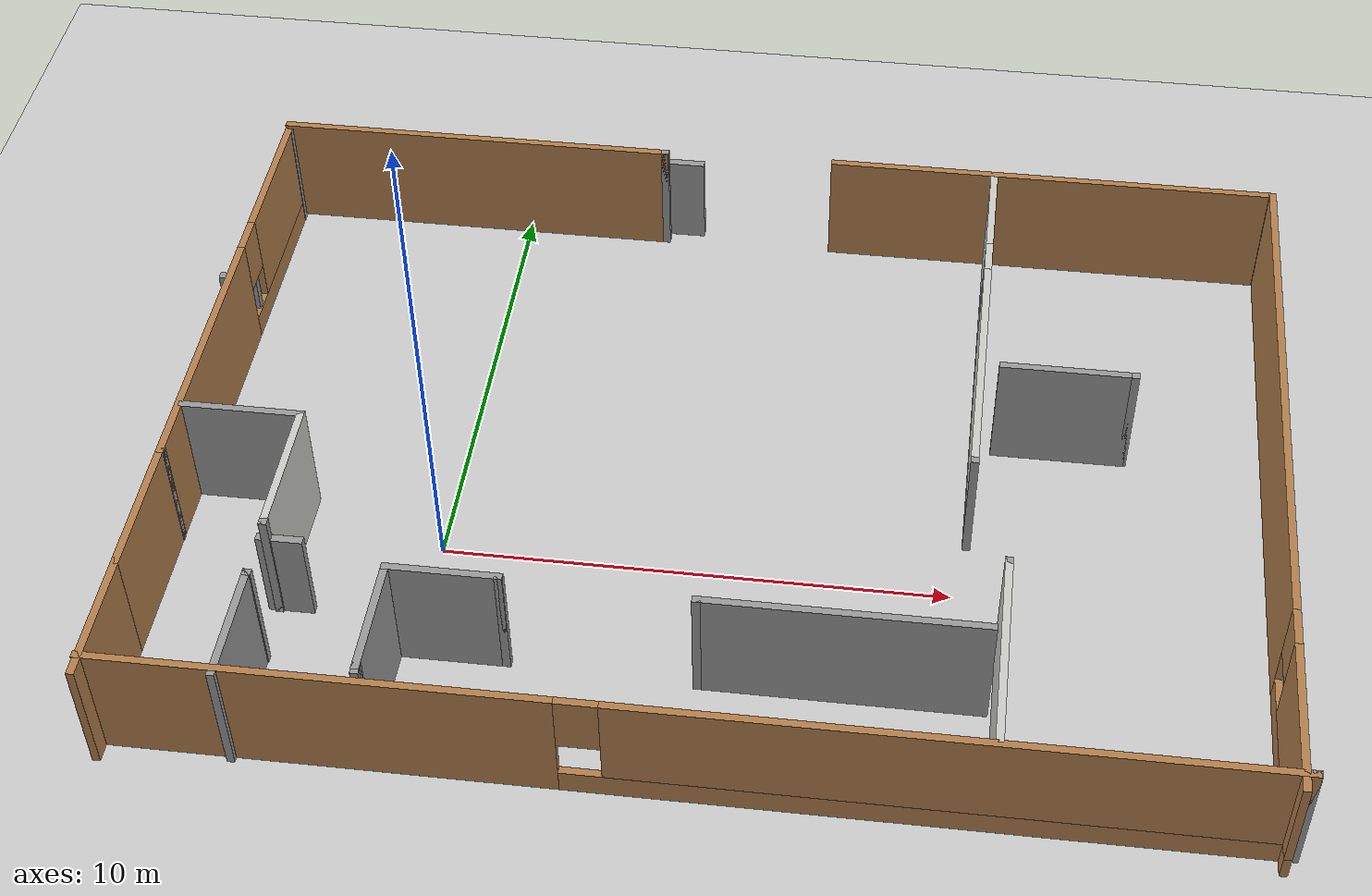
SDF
<sdf version="1.7">
 <world name="default">
  <model name="ground_plane">
   <static>1</static>
   <link name="link">
    <collision name="collision">
     <geometry><plane><normal>0 0 1</normal><size>100 100</size></plane></geometry>
     <surface>
      <contact><collide_bitmask>65535</collide_bitmask></contact>
      <friction><ode><mu>100</mu><mu2>50</mu2></ode></friction>
     </surface>
    </collision>
    <visual name="visual">
     <cast_shadows>0</cast_shadows>
     <geometry><plane><normal>0 0 1</normal><size>100 100</size></plane></geometry>
     <material>
      <script><uri>file://media/materials/scripts/gazebo.material</uri><name>Gazebo/Grey</name></script>
     </material>
    </visual>
   </link>
  </model>
  <model name="roboworld">
   <pose>5.5327 2.11728 0 0 -0 0</pose>
   <link name="Door_0">
    <collision name="Door_0_Collision">
     <geometry><box><size>0.9 0.17 2</size></box></geometry>
     <pose>0 0 1 0 -0 0</pose>
    </collision>
    <visual name="Door_0_Visual">
     <pose>0 0 1 0 -0 0</pose>
     <geometry><box><size>0.9 0.17 2</size></box></geometry>
     <material>
      <script><uri>file://media/materials/scripts/gazebo.material</uri><name>Gazebo/Grey</name></script>
     </material>
    </visual>
    <pose>-8.11468 -3.9025 0 0 -0 0</pose>
   </link>
   <link name="Door_1">
    <collision name="Door_1_Collision">
     <geometry><box><size>0.9 0.17 2</size></box></geometry>
     <pose>0 0 1 0 -0 0</pose>
    </collision>
    <visual name="Door_1_Visual">
     <pose>0 0 1 0 -0 0</pose>
     <geometry><box><size>0.9 0.17 2</size></box></geometry>
     <material>
      <script><uri>file://media/materials/scripts/gazebo.material</uri><name>Gazebo/Grey</name></script>
     </material>
    </visual>
    <pose>-2.08733 8.03633 0 0 -0 0</pose>
   </link>
   <link name="Wall_0">
    <collision name="Wall_0_Collision">
     <geometry><box><size>3 0.15 2.5</size></box></geometry>
     <pose>0 0 1.25 0 -0 0</pose>
    </collision>
    <visual name="Wall_0_Visual">
     <pose>0 0 1.25 0 -0 0</pose>
     <geometry><box><size>3 0.15 2.5</size></box></geometry>
     <material>
      <script><uri>file://media/materials/scripts/gazebo.material</uri><name>Gazebo/Wood</name></script>
      <ambient>1 1 1 1</ambient>
     </material>
     <meta><layer>0</layer></meta>
    </visual>
    <pose>-10.7727 -3.80228 0 0 -0 1.5708</pose>
   </link>
   <link name="Wall_1">
    <collision name="Wall_1_Collision">
     <geometry><box><size>0.16 0.15 2.5</size></box></geometry>
     <pose>0 0 1.25 0 -0 0</pose>
    </collision>
    <visual name="Wall_1_Visual">
     <pose>0 0 1.25 0 -0 0</pose>
     <geometry><box><size>0.16 0.15 2.5</size></box></geometry>
     <material>
      <script><uri>file://media/materials/scripts/gazebo.material</uri><name>Gazebo/Grey</name></script>
      <ambient>1 1 1 1</ambient>
     </material>
     <meta><layer>0</layer></meta>
    </visual>
    <pose>-10.7677 -2.37728 0 0 -0 0</pose>
   </link>
   <link name="Wall_10">
    <collision name="Wall_10_Collision">
     <geometry><box><size>0.16 0.15 2.5</size></box></geometry>
     <pose>0 0 1.25 0 -0 0</pose>
    </collision>
    <visual name="Wall_10_Visual">
     <pose>0 0 1.25 0 -0 0</pose>
     <geometry><box><size>0.16 0.15 2.5</size></box></geometry>
     <material>
      <script><uri>file://media/materials/scripts/gazebo.material</uri><name>Gazebo/Grey</name></script>
      <ambient>1 1 1 1</ambient>
     </material>
     <meta><layer>0</layer></meta>
    </visual>
    <pose>-2.45 7.71966 0 0 -0 0</pose>
   </link>
   <link name="Wall_12">
    <pose>-0.005 -7.45372 0 0 -0 0</pose>
    <visual name="Wall_12_Visual_0">
     <pose>-6.57776 0 1.25 0 -0 0</pose>
     <geometry><box><size>8.59447 0.15 2.5</size></box></geometry>
     <material>
      <script><uri>file://media/materials/scripts/gazebo.material</uri><name>Gazebo/Wood</name></script>
      <ambient>1 1 1 1</ambient>
     </material>
     <meta><layer>0</layer></meta>
    </visual>
    <collision name="Wall_12_Collision_0">
     <geometry><box><size>8.59447 0.15 2.5</size></box></geometry>
     <pose>-6.57776 0 1.25 0 -0 0</pose>
    </collision>
    <visual name="Wall_12_Visual_1">
     <pose>4.29724 0 0.25 0 -0 0</pose>
     <geometry><box><size>13.1555 0.15 0.5</size></box></geometry>
     <material>
      <script><uri>file://media/materials/scripts/gazebo.material</uri><name>Gazebo/Wood</name></script>
      <ambient>1 1 1 1</ambient>
     </material>
     <meta><layer>0</layer></meta>
    </visual>
    <collision name="Wall_12_Collision_1">
     <geometry><box><size>13.1555 0.15 0.5</size></box></geometry>
     <pose>4.29724 0 0.25 0 -0 0</pose>
    </collision>
    <visual name="Wall_12_Visual_2">
     <pose>4.69724 0 1.5 0 -0 0</pose>
     <geometry><box><size>12.3555 0.15 2</size></box></geometry>
     <material>
      <script><uri>file://media/materials/scripts/gazebo.material</uri><name>Gazebo/Wood</name></script>
      <ambient>1 1 1 1</ambient>
     </material>
     <meta><layer>0</layer></meta>
    </visual>
    <collision name="Wall_12_Collision_2">
     <geometry><box><size>12.3555 0.15 2</size></box></geometry>
     <pose>4.69724 0 1.5 0 -0 0</pose>
    </collision>
    <visual name="Wall_12_Visual_3">
     <pose>-1.88053 0 1.9 0 -0 0</pose>
     <geometry><box><size>0.8 0.15 1.2</size></box></geometry>
     <material>
      <script><uri>file://media/materials/scripts/gazebo.material</uri><name>Gazebo/Wood</name></script>
      <ambient>1 1 1 1</ambient>
     </material>
     <meta><layer>0</layer></meta>
    </visual>
    <collision name="Wall_12_Collision_3">
     <geometry><box><size>0.8 0.15 1.2</size></box></geometry>
     <pose>-1.88053 0 1.9 0 -0 0</pose>
    </collision>
   </link>
   <link name="Wall_13">
    <collision name="Wall_13_Collision">
     <geometry><box><size>0.16 0.15 2.5</size></box></geometry>
     <pose>0 0 1.25 0 -0 0</pose>
    </collision>
    <visual name="Wall_13_Visual">
     <pose>0 0 1.25 0 -0 0</pose>
     <geometry><box><size>0.16 0.15 2.5</size></box></geometry>
     <material>
      <script><uri>file://media/materials/scripts/gazebo.material</uri><name>Gazebo/Grey</name></script>
      <ambient>1 1 1 1</ambient>
     </material>
     <meta><layer>0</layer></meta>
    </visual>
    <pose>10.8 -7.45372 0 0 -0 0</pose>
   </link>
   <link name="Wall_15">
    <collision name="Wall_15_Collision">
     <geometry><box><size>9.5 0.15 2.5</size></box></geometry>
     <pose>0 0 1.25 0 -0 0</pose>
    </collision>
    <visual name="Wall_15_Visual">
     <pose>0 0 1.25 0 -0 0</pose>
     <geometry><box><size>9.5 0.15 2.5</size></box></geometry>
     <material>
      <script><uri>file://media/materials/scripts/gazebo.material</uri><name>Gazebo/Wood</name></script>
      <ambient>1 1 1 1</ambient>
     </material>
     <meta><layer>0</layer></meta>
    </visual>
    <pose>5.92262 7.82728 0 0 -0 0</pose>
   </link>
   <link name="Wall_16">
    <collision name="Wall_16_Collision">
     <geometry><box><size>0.16 0.15 2.5</size></box></geometry>
     <pose>0 0 1.25 0 -0 0</pose>
    </collision>
    <visual name="Wall_16_Visual">
     <pose>0 0 1.25 0 -0 0</pose>
     <geometry><box><size>0.16 0.15 2.5</size></box></geometry>
     <material>
      <script><uri>file://media/materials/scripts/gazebo.material</uri><name>Gazebo/Grey</name></script>
      <ambient>1 1 1 1</ambient>
     </material>
     <meta><layer>0</layer></meta>
    </visual>
    <pose>10.6026 7.82728 0 0 -0 0</pose>
   </link>
   <link name="Wall_17">
    <pose>10.6076 0.027276 0 0 -0 -1.5708</pose>
    <visual name="Wall_17_Visual_0">
     <pose>-2.01749 0 1.25 0 -0 0</pose>
     <geometry><box><size>11.715 0.15 2.5</size></box></geometry>
     <material>
      <script><uri>file://media/materials/scripts/gazebo.material</uri><name>Gazebo/Wood</name></script>
      <ambient>1 1 1 1</ambient>
     </material>
     <meta><layer>0</layer></meta>
    </visual>
    <collision name="Wall_17_Collision_0">
     <geometry><box><size>11.715 0.15 2.5</size></box></geometry>
     <pose>-2.01749 0 1.25 0 -0 0</pose>
    </collision>
    <visual name="Wall_17_Visual_1">
     <pose>5.85751 0 0.25 0 -0 0</pose>
     <geometry><box><size>4.03498 0.15 0.5</size></box></geometry>
     <material>
      <script><uri>file://media/materials/scripts/gazebo.material</uri><name>Gazebo/Wood</name></script>
      <ambient>1 1 1 1</ambient>
     </material>
     <meta><layer>0</layer></meta>
    </visual>
    <collision name="Wall_17_Collision_1">
     <geometry><box><size>4.03498 0.15 0.5</size></box></geometry>
     <pose>5.85751 0 0.25 0 -0 0</pose>
    </collision>
    <visual name="Wall_17_Visual_2">
     <pose>6.25751 0 1.5 0 -0 0</pose>
     <geometry><box><size>3.23498 0.15 2</size></box></geometry>
     <material>
      <script><uri>file://media/materials/scripts/gazebo.material</uri><name>Gazebo/Wood</name></script>
      <ambient>1 1 1 1</ambient>
     </material>
     <meta><layer>0</layer></meta>
    </visual>
    <collision name="Wall_17_Collision_2">
     <geometry><box><size>3.23498 0.15 2</size></box></geometry>
     <pose>6.25751 0 1.5 0 -0 0</pose>
    </collision>
    <visual name="Wall_17_Visual_3">
     <pose>4.24002 0 1.9 0 -0 0</pose>
     <geometry><box><size>0.8 0.15 1.2</size></box></geometry>
     <material>
      <script><uri>file://media/materials/scripts/gazebo.material</uri><name>Gazebo/Wood</name></script>
      <ambient>1 1 1 1</ambient>
     </material>
     <meta><layer>0</layer></meta>
    </visual>
    <collision name="Wall_17_Collision_3">
     <geometry><box><size>0.8 0.15 1.2</size></box></geometry>
     <pose>4.24002 0 1.9 0 -0 0</pose>
    </collision>
   </link>
   <link name="Wall_19">
    <pose>4.69122 3.52728 0 0 -0 -1.5708</pose>
    <visual name="Wall_19_Visual_0">
     <pose>-3.19234 0 1.25 0 -0 0</pose>
     <geometry><box><size>2.36532 0.15 2.5</size></box></geometry>
     <material>
      <script><uri>file://media/materials/scripts/gazebo.material</uri><name>Gazebo/CeilingTiled</name></script>
      <ambient>1 1 1 1</ambient>
     </material>
     <meta><layer>0</layer></meta>
    </visual>
    <collision name="Wall_19_Collision_0">
     <geometry><box><size>2.36532 0.15 2.5</size></box></geometry>
     <pose>-3.19234 0 1.25 0 -0 0</pose>
    </collision>
    <visual name="Wall_19_Visual_1">
     <pose>1.18266 0 0.25 0 -0 0</pose>
     <geometry><box><size>6.38468 0.15 0.5</size></box></geometry>
     <material>
      <script><uri>file://media/materials/scripts/gazebo.material</uri><name>Gazebo/CeilingTiled</name></script>
      <ambient>1 1 1 1</ambient>
     </material>
     <meta><layer>0</layer></meta>
    </visual>
    <collision name="Wall_19_Collision_1">
     <geometry><box><size>6.38468 0.15 0.5</size></box></geometry>
     <pose>1.18266 0 0.25 0 -0 0</pose>
    </collision>
    <visual name="Wall_19_Visual_2">
     <pose>1.58266 0 1.5 0 -0 0</pose>
     <geometry><box><size>5.58468 0.15 2</size></box></geometry>
     <material>
      <script><uri>file://media/materials/scripts/gazebo.material</uri><name>Gazebo/CeilingTiled</name></script>
      <ambient>1 1 1 1</ambient>
     </material>
     <meta><layer>0</layer></meta>
    </visual>
    <collision name="Wall_19_Collision_2">
     <geometry><box><size>5.58468 0.15 2</size></box></geometry>
     <pose>1.58266 0 1.5 0 -0 0</pose>
    </collision>
    <visual name="Wall_19_Visual_3">
     <pose>-1.60968 0 1.9 0 -0 0</pose>
     <geometry><box><size>0.8 0.15 1.2</size></box></geometry>
     <material>
      <script><uri>file://media/materials/scripts/gazebo.material</uri><name>Gazebo/CeilingTiled</name></script>
      <ambient>1 1 1 1</ambient>
     </material>
     <meta><layer>0</layer></meta>
    </visual>
    <collision name="Wall_19_Collision_3">
     <geometry><box><size>0.8 0.15 1.2</size></box></geometry>
     <pose>-1.60968 0 1.9 0 -0 0</pose>
    </collision>
   </link>
   <link name="Wall_2">
    <collision name="Wall_2_Collision">
     <geometry><box><size>0.16 0.15 2.5</size></box></geometry>
     <pose>0 0 1.25 0 -0 0</pose>
    </collision>
    <visual name="Wall_2_Visual">
     <pose>0 0 1.25 0 -0 0</pose>
     <geometry><box><size>0.16 0.15 2.5</size></box></geometry>
     <material>
      <script><uri>file://media/materials/scripts/gazebo.material</uri><name>Gazebo/Grey</name></script>
      <ambient>1 1 1 1</ambient>
     </material>
     <meta><layer>0</layer></meta>
    </visual>
    <pose>-10.7677 -2.37728 0 0 -0 3.14159</pose>
   </link>
   <link name="Wall_20">
    <pose>4.69622 -0.772724 0 0 -0 0</pose>
    <visual name="Wall_20_Visual_0">
     <pose>0 0 1.25 0 -0 0</pose>
     <geometry><box><size>0.16 0.15 2.5</size></box></geometry>
     <material>
      <script><uri>file://media/materials/scripts/gazebo.material</uri><name>Gazebo/Grey</name></script>
      <ambient>1 1 1 1</ambient>
     </material>
     <meta><layer>0</layer></meta>
    </visual>
    <collision name="Wall_20_Collision_0">
     <geometry><box><size>0.16 0.15 2.5</size></box></geometry>
     <pose>0 0 1.25 0 -0 0</pose>
    </collision>
   </link>
   <link name="Wall_22">
    <collision name="Wall_22_Collision">
     <geometry><box><size>4.25 0.15 2.5</size></box></geometry>
     <pose>0 0 1.25 0 -0 0</pose>
    </collision>
    <visual name="Wall_22_Visual">
     <pose>0 0 1.25 0 -0 0</pose>
     <geometry><box><size>4.25 0.15 2.5</size></box></geometry>
     <material>
      <script><uri>file://media/materials/scripts/gazebo.material</uri><name>Gazebo/CeilingTiled</name></script>
      <ambient>1 1 1 1</ambient>
     </material>
     <meta><layer>0</layer></meta>
    </visual>
    <pose>5.44451 -5.29611 0 0 -0 1.5708</pose>
   </link>
   <link name="Wall_23">
    <collision name="Wall_23_Collision">
     <geometry><box><size>0.15 0.15 2.5</size></box></geometry>
     <pose>0 0 1.25 0 -0 0</pose>
    </collision>
    <visual name="Wall_23_Visual">
     <pose>0 0 1.25 0 -0 0</pose>
     <geometry><box><size>0.15 0.15 2.5</size></box></geometry>
     <material>
      <script><uri>file://media/materials/scripts/gazebo.material</uri><name>Gazebo/Grey</name></script>
      <ambient>1 1 1 1</ambient>
     </material>
     <meta><layer>0</layer></meta>
    </visual>
    <pose>5.44451 -3.24611 0 0 -0 0</pose>
   </link>
   <link name="Wall_25">
    <collision name="Wall_25_Collision">
     <geometry><box><size>2.5 0.15 2.5</size></box></geometry>
     <pose>0 0 1.25 0 -0 0</pose>
    </collision>
    <visual name="Wall_25_Visual">
     <pose>0 0 1.25 0 -0 0</pose>
     <geometry><box><size>2.5 0.15 2.5</size></box></geometry>
     <material>
      <script><uri>file://media/materials/scripts/gazebo.material</uri><name>Gazebo/Grey</name></script>
      <ambient>1 1 1 1</ambient>
     </material>
     <meta><layer>0</layer></meta>
    </visual>
    <pose>-9.52239 -1.10457 0 0 -0 0</pose>
   </link>
   <link name="Wall_26">
    <collision name="Wall_26_Collision">
     <geometry><box><size>3 0.15 2.5</size></box></geometry>
     <pose>0 0 1.25 0 -0 0</pose>
    </collision>
    <visual name="Wall_26_Visual">
     <pose>0 0 1.25 0 -0 0</pose>
     <geometry><box><size>3 0.15 2.5</size></box></geometry>
     <material>
      <script><uri>file://media/materials/scripts/gazebo.material</uri><name>Gazebo/CeilingTiled</name></script>
      <ambient>1 1 1 1</ambient>
     </material>
     <meta><layer>0</layer></meta>
    </visual>
    <pose>-8.34739 -2.52957 0 0 -0 -1.5708</pose>
   </link>
   <link name="Wall_27">
    <collision name="Wall_27_Collision">
     <geometry><box><size>0.16 0.15 2.5</size></box></geometry>
     <pose>0 0 1.25 0 -0 0</pose>
    </collision>
    <visual name="Wall_27_Visual">
     <pose>0 0 1.25 0 -0 0</pose>
     <geometry><box><size>0.16 0.15 2.5</size></box></geometry>
     <material>
      <script><uri>file://media/materials/scripts/gazebo.material</uri><name>Gazebo/Grey</name></script>
      <ambient>1 1 1 1</ambient>
     </material>
     <meta><layer>0</layer></meta>
    </visual>
    <pose>-8.34239 -3.95457 0 0 -0 0</pose>
   </link>
   <link name="Wall_29">
    <collision name="Wall_29_Collision">
     <geometry><box><size>2.5 0.15 2.5</size></box></geometry>
     <pose>0 0 1.25 0 -0 0</pose>
    </collision>
    <visual name="Wall_29_Visual">
     <pose>0 0 1.25 0 -0 0</pose>
     <geometry><box><size>2.5 0.15 2.5</size></box></geometry>
     <material>
      <script><uri>file://media/materials/scripts/gazebo.material</uri><name>Gazebo/Grey</name></script>
      <ambient>1 1 1 1</ambient>
     </material>
     <meta><layer>0</layer></meta>
    </visual>
    <pose>-8.32991 -6.38633 0 0 -0 1.5708</pose>
   </link>
   <link name="Wall_30">
    <collision name="Wall_30_Collision">
     <geometry><box><size>0.16 0.15 2.5</size></box></geometry>
     <pose>0 0 1.25 0 -0 0</pose>
    </collision>
    <visual name="Wall_30_Visual">
     <pose>0 0 1.25 0 -0 0</pose>
     <geometry><box><size>0.16 0.15 2.5</size></box></geometry>
     <material>
      <script><uri>file://media/materials/scripts/gazebo.material</uri><name>Gazebo/Grey</name></script>
      <ambient>1 1 1 1</ambient>
     </material>
     <meta><layer>0</layer></meta>
    </visual>
    <pose>-8.32491 -5.21133 0 0 -0 0</pose>
   </link>
   <link name="Wall_31">
    <collision name="Wall_31_Collision">
     <geometry><box><size>0.16 0.15 2.5</size></box></geometry>
     <pose>0 0 1.25 0 -0 0</pose>
    </collision>
    <visual name="Wall_31_Visual">
     <pose>0 0 1.25 0 -0 0</pose>
     <geometry><box><size>0.16 0.15 2.5</size></box></geometry>
     <material>
      <script><uri>file://media/materials/scripts/gazebo.material</uri><name>Gazebo/Grey</name></script>
      <ambient>1 1 1 1</ambient>
     </material>
     <meta><layer>0</layer></meta>
    </visual>
    <pose>-8.31491 -5.21133 0 0 -0 0</pose>
   </link>
   <link name="Wall_33">
    <collision name="Wall_33_Collision">
     <geometry><box><size>2.75 0.15 2.5</size></box></geometry>
     <pose>0 0 1.25 0 -0 0</pose>
    </collision>
    <visual name="Wall_33_Visual">
     <pose>0 0 1.25 0 -0 0</pose>
     <geometry><box><size>2.75 0.15 2.5</size></box></geometry>
     <material>
      <script><uri>file://media/materials/scripts/gazebo.material</uri><name>Gazebo/Grey</name></script>
      <ambient>1 1 1 1</ambient>
     </material>
     <meta><layer>0</layer></meta>
    </visual>
    <pose>6.42167 1.90858 0 0 -0 0</pose>
   </link>
   <link name="Wall_34">
    <collision name="Wall_34_Collision">
     <geometry><box><size>0.16 0.15 2.5</size></box></geometry>
     <pose>0 0 1.25 0 -0 0</pose>
    </collision>
    <visual name="Wall_34_Visual">
     <pose>0 0 1.25 0 -0 0</pose>
     <geometry><box><size>0.16 0.15 2.5</size></box></geometry>
     <material>
      <script><uri>file://media/materials/scripts/gazebo.material</uri><name>Gazebo/Grey</name></script>
      <ambient>1 1 1 1</ambient>
     </material>
     <meta><layer>0</layer></meta>
    </visual>
    <pose>7.72667 1.90858 0 0 -0 0</pose>
   </link>
   <link name="Wall_36">
    <collision name="Wall_36_Collision">
     <geometry><box><size>2.5 0.15 2.5</size></box></geometry>
     <pose>0 0 1.25 0 -0 0</pose>
    </collision>
    <visual name="Wall_36_Visual">
     <pose>0 0 1.25 0 -0 0</pose>
     <geometry><box><size>2.5 0.15 2.5</size></box></geometry>
     <material>
      <script><uri>file://media/materials/scripts/gazebo.material</uri><name>Gazebo/Grey</name></script>
      <ambient>1 1 1 1</ambient>
     </material>
     <meta><layer>0</layer></meta>
    </visual>
    <pose>-5.85482 -5.9384 0 0 -0 -1.5708</pose>
   </link>
   <link name="Wall_37">
    <collision name="Wall_37_Collision">
     <geometry><box><size>0.16 0.15 2.5</size></box></geometry>
     <pose>0 0 1.25 0 -0 0</pose>
    </collision>
    <visual name="Wall_37_Visual">
     <pose>0 0 1.25 0 -0 0</pose>
     <geometry><box><size>0.16 0.15 2.5</size></box></geometry>
     <material>
      <script><uri>file://media/materials/scripts/gazebo.material</uri><name>Gazebo/Grey</name></script>
      <ambient>1 1 1 1</ambient>
     </material>
     <meta><layer>0</layer></meta>
    </visual>
    <pose>-5.84982 -7.1134 0 0 -0 0</pose>
   </link>
   <link name="Wall_38">
    <collision name="Wall_38_Collision">
     <geometry><box><size>0.25 0.15 2.5</size></box></geometry>
     <pose>0 0 1.25 0 -0 0</pose>
    </collision>
    <visual name="Wall_38_Visual">
     <pose>0 0 1.25 0 -0 0</pose>
     <geometry><box><size>0.25 0.15 2.5</size></box></geometry>
     <material>
      <script><uri>file://media/materials/scripts/gazebo.material</uri><name>Gazebo/Grey</name></script>
      <ambient>1 1 1 1</ambient>
     </material>
     <meta><layer>0</layer></meta>
    </visual>
    <pose>-5.84482 -7.1634 0 0 -0 -1.5708</pose>
   </link>
   <link name="Wall_4">
    <collision name="Wall_4_Collision">
     <geometry><box><size>2.75 0.15 2.5</size></box></geometry>
     <pose>0 0 1.25 0 -0 0</pose>
    </collision>
    <visual name="Wall_4_Visual">
     <pose>0 0 1.25 0 -0 0</pose>
     <geometry><box><size>2.75 0.15 2.5</size></box></geometry>
     <material>
      <script><uri>file://media/materials/scripts/gazebo.material</uri><name>Gazebo/Wood</name></script>
      <ambient>1 1 1 1</ambient>
     </material>
     <meta><layer>0</layer></meta>
    </visual>
    <pose>-10.7727 -6.52728 0 0 -0 -1.5708</pose>
   </link>
   <link name="Wall_40">
    <collision name="Wall_40_Collision">
     <geometry><box><size>2.25 0.15 2.5</size></box></geometry>
     <pose>0 0 1.25 0 -0 0</pose>
    </collision>
    <visual name="Wall_40_Visual">
     <pose>0 0 1.25 0 -0 0</pose>
     <geometry><box><size>2.25 0.15 2.5</size></box></geometry>
     <material>
      <script><uri>file://media/materials/scripts/gazebo.material</uri><name>Gazebo/Grey</name></script>
      <ambient>1 1 1 1</ambient>
     </material>
     <meta><layer>0</layer></meta>
    </visual>
    <pose>-4.80482 -4.7634 0 0 -0 0</pose>
   </link>
   <link name="Wall_41">
    <collision name="Wall_41_Collision">
     <geometry><box><size>0.16 0.15 2.5</size></box></geometry>
     <pose>0 0 1.25 0 -0 0</pose>
    </collision>
    <visual name="Wall_41_Visual">
     <pose>0 0 1.25 0 -0 0</pose>
     <geometry><box><size>0.16 0.15 2.5</size></box></geometry>
     <material>
      <script><uri>file://media/materials/scripts/gazebo.material</uri><name>Gazebo/Grey</name></script>
      <ambient>1 1 1 1</ambient>
     </material>
     <meta><layer>0</layer></meta>
    </visual>
    <pose>-3.74982 -4.7634 0 0 -0 0</pose>
   </link>
   <link name="Wall_43">
    <collision name="Wall_43_Collision">
     <geometry><box><size>5.5 0.15 2.5</size></box></geometry>
     <pose>0 0 1.25 0 -0 0</pose>
    </collision>
    <visual name="Wall_43_Visual">
     <pose>0 0 1.25 0 -0 0</pose>
     <geometry><box><size>5.5 0.15 2.5</size></box></geometry>
     <material>
      <script><uri>file://media/materials/scripts/gazebo.material</uri><name>Gazebo/Grey</name></script>
      <ambient>1 1 1 1</ambient>
     </material>
     <meta><layer>0</layer></meta>
    </visual>
    <pose>2.55428 -4.87102 0 0 -0 3.14159</pose>
   </link>
   <link name="Wall_44">
    <collision name="Wall_44_Collision">
     <geometry><box><size>0.16 0.15 2.5</size></box></geometry>
     <pose>0 0 1.25 0 -0 0</pose>
    </collision>
    <visual name="Wall_44_Visual">
     <pose>0 0 1.25 0 -0 0</pose>
     <geometry><box><size>0.16 0.15 2.5</size></box></geometry>
     <material>
      <script><uri>file://media/materials/scripts/gazebo.material</uri><name>Gazebo/Grey</name></script>
      <ambient>1 1 1 1</ambient>
     </material>
     <meta><layer>0</layer></meta>
    </visual>
    <pose>-0.115717 -4.87102 0 0 -0 0</pose>
   </link>
   <link name="Wall_6">
    <pose>-10.7727 2.54772 0 0 -0 1.5708</pose>
    <visual name="Wall_6_Visual_0">
     <pose>-2.00034 0 1.25 0 -0 0</pose>
     <geometry><box><size>5.99933 0.15 2.5</size></box></geometry>
     <material>
      <script><uri>file://media/materials/scripts/gazebo.material</uri><name>Gazebo/Wood</name></script>
      <ambient>1 1 1 1</ambient>
     </material>
     <meta><layer>0</layer></meta>
    </visual>
    <collision name="Wall_6_Collision_0">
     <geometry><box><size>5.99933 0.15 2.5</size></box></geometry>
     <pose>-2.00034 0 1.25 0 -0 0</pose>
    </collision>
    <visual name="Wall_6_Visual_1">
     <pose>2.99966 0 0.25 0 -0 0</pose>
     <geometry><box><size>4.00067 0.15 0.5</size></box></geometry>
     <material>
      <script><uri>file://media/materials/scripts/gazebo.material</uri><name>Gazebo/Wood</name></script>
      <ambient>1 1 1 1</ambient>
     </material>
     <meta><layer>0</layer></meta>
    </visual>
    <collision name="Wall_6_Collision_1">
     <geometry><box><size>4.00067 0.15 0.5</size></box></geometry>
     <pose>2.99966 0 0.25 0 -0 0</pose>
    </collision>
    <visual name="Wall_6_Visual_2">
     <pose>3.39966 0 1.5 0 -0 0</pose>
     <geometry><box><size>3.20067 0.15 2</size></box></geometry>
     <material>
      <script><uri>file://media/materials/scripts/gazebo.material</uri><name>Gazebo/Wood</name></script>
      <ambient>1 1 1 1</ambient>
     </material>
     <meta><layer>0</layer></meta>
    </visual>
    <collision name="Wall_6_Collision_2">
     <geometry><box><size>3.20067 0.15 2</size></box></geometry>
     <pose>3.39966 0 1.5 0 -0 0</pose>
    </collision>
    <visual name="Wall_6_Visual_3">
     <pose>1.39933 0 1.9 0 -0 0</pose>
     <geometry><box><size>0.8 0.15 1.2</size></box></geometry>
     <material>
      <script><uri>file://media/materials/scripts/gazebo.material</uri><name>Gazebo/Wood</name></script>
      <ambient>1 1 1 1</ambient>
     </material>
     <meta><layer>0</layer></meta>
    </visual>
    <collision name="Wall_6_Collision_3">
     <geometry><box><size>0.8 0.15 1.2</size></box></geometry>
     <pose>1.39933 0 1.9 0 -0 0</pose>
    </collision>
   </link>
   <link name="Wall_7">
    <collision name="Wall_7_Collision">
     <geometry><box><size>0.16 0.15 2.5</size></box></geometry>
     <pose>0 0 1.25 0 -0 0</pose>
    </collision>
    <visual name="Wall_7_Visual">
     <pose>0 0 1.25 0 -0 0</pose>
     <geometry><box><size>0.16 0.15 2.5</size></box></geometry>
     <material>
      <script><uri>file://media/materials/scripts/gazebo.material</uri><name>Gazebo/Grey</name></script>
      <ambient>1 1 1 1</ambient>
     </material>
     <meta><layer>0</layer></meta>
    </visual>
    <pose>-10.7677 7.47272 0 0 -0 0</pose>
   </link>
   <link name="Wall_9">
    <collision name="Wall_9_Collision">
     <geometry><box><size>8.5 0.15 2.5</size></box></geometry>
     <pose>0 0 1.25 0 -0 0</pose>
    </collision>
    <visual name="Wall_9_Visual">
     <pose>0 0 1.25 0 -0 0</pose>
     <geometry><box><size>8.5 0.15 2.5</size></box></geometry>
     <material>
      <script><uri>file://media/materials/scripts/gazebo.material</uri><name>Gazebo/Wood</name></script>
      <ambient>1 1 1 1</ambient>
     </material>
     <meta><layer>0</layer></meta>
    </visual>
    <pose>-6.63 7.71966 0 0 -0 0</pose>
   </link>
   <link name="Window_3">
    <collision name="Window_3_Collision">
     <geometry><box><size>0.8 0.17 0.8</size></box></geometry>
     <pose>0 0 0.4 0 -0 0</pose>
    </collision>
    <visual name="Window_3_Visual">
     <pose>0 0 0.4 0 -0 0</pose>
     <geometry><box><size>0.8 0.17 0.8</size></box></geometry>
     <material>
      <script><uri>file://media/materials/scripts/gazebo.material</uri><name>Gazebo/Grey</name></script>
     </material>
    </visual>
    <pose>-11.1268 3.94705 0.5 0 -0 0</pose>
   </link>
   <static>1</static>
  </model>
 </world>
</sdf>
